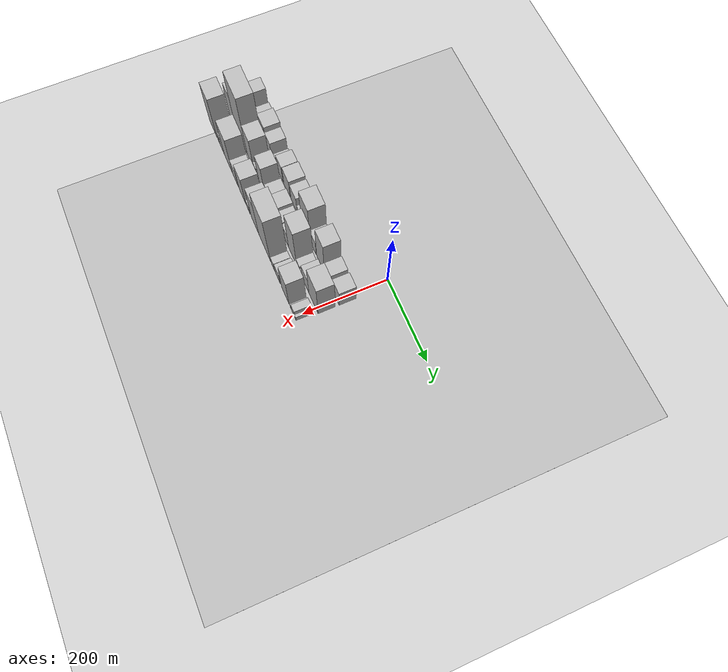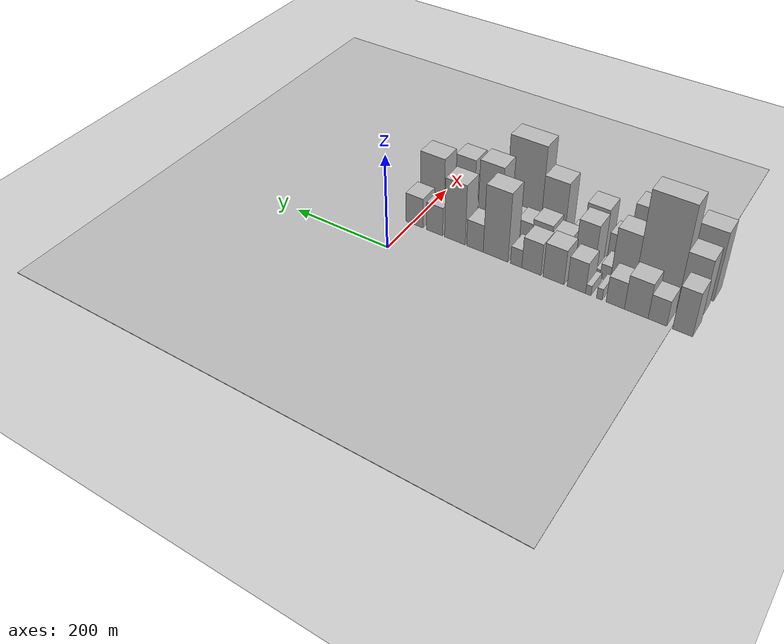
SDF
<sdf version="1.6">
 <world name="default">
  <include><name>ground_plane_1</name><uri>model://HANNAS_ground_plane</uri></include>
  <include>
   <name>ground_plane_2</name>
   <uri>model://HANNAS_ground_plane</uri>
   <pose>100 0 0  0 0 0</pose>
  </include>
  <model name="building_1">
   <static>1</static>
   <pose>100.0000 -519.0845 0 0.000000 0.000000 0.000000</pose>
   <link name="link">
    <pose>0 0 46.50 0 0 0</pose>
    <collision name="collision"><geometry><box><size>40.0000 33.8309 93.0000</size></box></geometry></collision>
    <visual name="visual">
     <cast_shadows>0</cast_shadows>
     <geometry><box><size>40.0000 33.8309 93.0000</size></box></geometry>
     <material>
      <script>
       <uri>model://HANNAS_wall/materials/scripts</uri>
       <uri>model://HANNAS_wall/materials/textures</uri>
       <name>vrc/HANNAS_wall</name>
      </script>
     </material>
    </visual>
   </link>
  </model>
  <model name="building_2">
   <static>1</static>
   <pose>100.0000 -476.1004 0 0.000000 0.000000 0.000000</pose>
   <link name="link">
    <pose>0 0 27.00 0 0 0</pose>
    <collision name="collision"><geometry><box><size>40.0000 32.1374 54.0000</size></box></geometry></collision>
    <visual name="visual">
     <cast_shadows>0</cast_shadows>
     <geometry><box><size>40.0000 32.1374 54.0000</size></box></geometry>
     <material>
      <script>
       <uri>model://HANNAS_wall/materials/scripts</uri>
       <uri>model://HANNAS_wall/materials/textures</uri>
       <name>vrc/HANNAS_wall</name>
      </script>
     </material>
    </visual>
   </link>
  </model>
  <model name="building_3">
   <static>1</static>
   <pose>100.0000 -439.1285 0 0.000000 0.000000 0.000000</pose>
   <link name="link">
    <pose>0 0 37.50 0 0 0</pose>
    <collision name="collision"><geometry><box><size>40.0000 41.8063 75.0000</size></box></geometry></collision>
    <visual name="visual">
     <cast_shadows>0</cast_shadows>
     <geometry><box><size>40.0000 41.8063 75.0000</size></box></geometry>
     <material>
      <script>
       <uri>model://HANNAS_wall/materials/scripts</uri>
       <uri>model://HANNAS_wall/materials/textures</uri>
       <name>vrc/HANNAS_wall</name>
      </script>
     </material>
    </visual>
   </link>
  </model>
  <model name="building_4">
   <static>1</static>
   <pose>100.0000 -401.7499 0 0.000000 0.000000 0.000000</pose>
   <link name="link">
    <pose>0 0 28.50 0 0 0</pose>
    <collision name="collision"><geometry><box><size>40.0000 32.9508 57.0000</size></box></geometry></collision>
    <visual name="visual">
     <cast_shadows>0</cast_shadows>
     <geometry><box><size>40.0000 32.9508 57.0000</size></box></geometry>
     <material>
      <script>
       <uri>model://HANNAS_wall/materials/scripts</uri>
       <uri>model://HANNAS_wall/materials/textures</uri>
       <name>vrc/HANNAS_wall</name>
      </script>
     </material>
    </visual>
   </link>
  </model>
  <model name="building_5">
   <static>1</static>
   <pose>100.0000 -373.0983 0 0.000000 0.000000 0.000000</pose>
   <link name="link">
    <pose>0 0 12.00 0 0 0</pose>
    <collision name="collision"><geometry><box><size>40.0000 10.3525 24.0000</size></box></geometry></collision>
    <visual name="visual">
     <cast_shadows>0</cast_shadows>
     <geometry><box><size>40.0000 10.3525 24.0000</size></box></geometry>
     <material>
      <script>
       <uri>model://HANNAS_wall/materials/scripts</uri>
       <uri>model://HANNAS_wall/materials/textures</uri>
       <name>vrc/HANNAS_wall</name>
      </script>
     </material>
    </visual>
   </link>
  </model>
  <model name="building_6">
   <static>1</static>
   <pose>100.0000 -352.8675 0 0.000000 0.000000 0.000000</pose>
   <link name="link">
    <pose>0 0 10.50 0 0 0</pose>
    <collision name="collision"><geometry><box><size>40.0000 10.1091 21.0000</size></box></geometry></collision>
    <visual name="visual">
     <cast_shadows>0</cast_shadows>
     <geometry><box><size>40.0000 10.1091 21.0000</size></box></geometry>
     <material>
      <script>
       <uri>model://HANNAS_wall/materials/scripts</uri>
       <uri>model://HANNAS_wall/materials/textures</uri>
       <name>vrc/HANNAS_wall</name>
      </script>
     </material>
    </visual>
   </link>
  </model>
  <model name="building_7">
   <static>1</static>
   <pose>100.0000 -330.7719 0 0.000000 0.000000 0.000000</pose>
   <link name="link">
    <pose>0 0 33.00 0 0 0</pose>
    <collision name="collision"><geometry><box><size>40.0000 34.0822 66.0000</size></box></geometry></collision>
    <visual name="visual">
     <cast_shadows>0</cast_shadows>
     <geometry><box><size>40.0000 34.0822 66.0000</size></box></geometry>
     <material>
      <script>
       <uri>model://HANNAS_wall/materials/scripts</uri>
       <uri>model://HANNAS_wall/materials/textures</uri>
       <name>vrc/HANNAS_wall</name>
      </script>
     </material>
    </visual>
   </link>
  </model>
  <model name="building_8">
   <static>1</static>
   <pose>100.0000 -287.7818 0 0.000000 0.000000 0.000000</pose>
   <link name="link">
    <pose>0 0 37.50 0 0 0</pose>
    <collision name="collision"><geometry><box><size>40.0000 39.8979 75.0000</size></box></geometry></collision>
    <visual name="visual">
     <cast_shadows>0</cast_shadows>
     <geometry><box><size>40.0000 39.8979 75.0000</size></box></geometry>
     <material>
      <script>
       <uri>model://HANNAS_wall/materials/scripts</uri>
       <uri>model://HANNAS_wall/materials/textures</uri>
       <name>vrc/HANNAS_wall</name>
      </script>
     </material>
    </visual>
   </link>
  </model>
  <model name="building_9">
   <static>1</static>
   <pose>100.0000 -245.2879 0 0.000000 0.000000 0.000000</pose>
   <link name="link">
    <pose>0 0 34.50 0 0 0</pose>
    <collision name="collision"><geometry><box><size>40.0000 37.0899 69.0000</size></box></geometry></collision>
    <visual name="visual">
     <cast_shadows>0</cast_shadows>
     <geometry><box><size>40.0000 37.0899 69.0000</size></box></geometry>
     <material>
      <script>
       <uri>model://HANNAS_wall/materials/scripts</uri>
       <uri>model://HANNAS_wall/materials/textures</uri>
       <name>vrc/HANNAS_wall</name>
      </script>
     </material>
    </visual>
   </link>
  </model>
  <model name="building_10">
   <static>1</static>
   <pose>100.0000 -215.5935 0 0.000000 0.000000 0.000000</pose>
   <link name="link">
    <pose>0 0 19.50 0 0 0</pose>
    <collision name="collision"><geometry><box><size>40.0000 22.2987 39.0000</size></box></geometry></collision>
    <visual name="visual">
     <cast_shadows>0</cast_shadows>
     <geometry><box><size>40.0000 22.2987 39.0000</size></box></geometry>
     <material>
      <script>
       <uri>model://HANNAS_wall/materials/scripts</uri>
       <uri>model://HANNAS_wall/materials/textures</uri>
       <name>vrc/HANNAS_wall</name>
      </script>
     </material>
    </visual>
   </link>
  </model>
  <model name="building_11">
   <static>1</static>
   <pose>100.0000 -174.6152 0 0.000000 0.000000 0.000000</pose>
   <link name="link">
    <pose>0 0 75.00 0 0 0</pose>
    <collision name="collision"><geometry><box><size>40.0000 49.6580 150.0000</size></box></geometry></collision>
    <visual name="visual">
     <cast_shadows>0</cast_shadows>
     <geometry><box><size>40.0000 49.6580 150.0000</size></box></geometry>
     <material>
      <script>
       <uri>model://HANNAS_wall/materials/scripts</uri>
       <uri>model://HANNAS_wall/materials/textures</uri>
       <name>vrc/HANNAS_wall</name>
      </script>
     </material>
    </visual>
   </link>
  </model>
  <model name="building_12">
   <static>1</static>
   <pose>100.0000 -132.8719 0 0.000000 0.000000 0.000000</pose>
   <link name="link">
    <pose>0 0 30.00 0 0 0</pose>
    <collision name="collision"><geometry><box><size>40.0000 33.8285 60.0000</size></box></geometry></collision>
    <visual name="visual">
     <cast_shadows>0</cast_shadows>
     <geometry><box><size>40.0000 33.8285 60.0000</size></box></geometry>
     <material>
      <script>
       <uri>model://HANNAS_wall/materials/scripts</uri>
       <uri>model://HANNAS_wall/materials/textures</uri>
       <name>vrc/HANNAS_wall</name>
      </script>
     </material>
    </visual>
   </link>
  </model>
  <model name="building_13">
   <static>1</static>
   <pose>100.0000 -91.4328 0 0.000000 0.000000 0.000000</pose>
   <link name="link">
    <pose>0 0 66.00 0 0 0</pose>
    <collision name="collision"><geometry><box><size>40.0000 43.0498 132.0000</size></box></geometry></collision>
    <visual name="visual">
     <cast_shadows>0</cast_shadows>
     <geometry><box><size>40.0000 43.0498 132.0000</size></box></geometry>
     <material>
      <script>
       <uri>model://HANNAS_wall/materials/scripts</uri>
       <uri>model://HANNAS_wall/materials/textures</uri>
       <name>vrc/HANNAS_wall</name>
      </script>
     </material>
    </visual>
   </link>
  </model>
  <model name="building_14">
   <static>1</static>
   <pose>100.0000 -48.8827 0 0.000000 0.000000 0.000000</pose>
   <link name="link">
    <pose>0 0 31.50 0 0 0</pose>
    <collision name="collision"><geometry><box><size>40.0000 34.0503 63.0000</size></box></geometry></collision>
    <visual name="visual">
     <cast_shadows>0</cast_shadows>
     <geometry><box><size>40.0000 34.0503 63.0000</size></box></geometry>
     <material>
      <script>
       <uri>model://HANNAS_wall/materials/scripts</uri>
       <uri>model://HANNAS_wall/materials/textures</uri>
       <name>vrc/HANNAS_wall</name>
      </script>
     </material>
    </visual>
   </link>
  </model>
  <model name="building_15">
   <static>1</static>
   <pose>100.0000 -5.6149 0 0.000000 0.000000 0.000000</pose>
   <link name="link">
    <pose>0 0 33.00 0 0 0</pose>
    <collision name="collision"><geometry><box><size>40.0000 36.4854 66.0000</size></box></geometry></collision>
    <visual name="visual">
     <cast_shadows>0</cast_shadows>
     <geometry><box><size>40.0000 36.4854 66.0000</size></box></geometry>
     <material>
      <script>
       <uri>model://HANNAS_wall/materials/scripts</uri>
       <uri>model://HANNAS_wall/materials/textures</uri>
       <name>vrc/HANNAS_wall</name>
      </script>
     </material>
    </visual>
   </link>
  </model>
  <model name="building_30">
   <static>1</static>
   <pose>149.0000 -511.6956 0 0.000000 0.000000 0.000000</pose>
   <link name="link">
    <pose>0 0 61.50 0 0 0</pose>
    <collision name="collision"><geometry><box><size>40.0000 42.6088 123.0000</size></box></geometry></collision>
    <visual name="visual">
     <cast_shadows>0</cast_shadows>
     <geometry><box><size>40.0000 42.6088 123.0000</size></box></geometry>
     <material>
      <script>
       <uri>model://HANNAS_wall/materials/scripts</uri>
       <uri>model://HANNAS_wall/materials/textures</uri>
       <name>vrc/HANNAS_wall</name>
      </script>
     </material>
    </visual>
   </link>
  </model>
  <model name="building_31">
   <static>1</static>
   <pose>149.0000 -452.3626 0 0.000000 0.000000 0.000000</pose>
   <link name="link">
    <pose>0 0 108.00 0 0 0</pose>
    <collision name="collision"><geometry><box><size>40.0000 76.0571 216.0000</size></box></geometry></collision>
    <visual name="visual">
     <cast_shadows>0</cast_shadows>
     <geometry><box><size>40.0000 76.0571 216.0000</size></box></geometry>
     <material>
      <script>
       <uri>model://HANNAS_wall/materials/scripts</uri>
       <uri>model://HANNAS_wall/materials/textures</uri>
       <name>vrc/HANNAS_wall</name>
      </script>
     </material>
    </visual>
   </link>
  </model>
  <model name="building_32">
   <static>1</static>
   <pose>149.0000 -392.5495 0 0.000000 0.000000 0.000000</pose>
   <link name="link">
    <pose>0 0 60.00 0 0 0</pose>
    <collision name="collision"><geometry><box><size>40.0000 43.5690 120.0000</size></box></geometry></collision>
    <visual name="visual">
     <cast_shadows>0</cast_shadows>
     <geometry><box><size>40.0000 43.5690 120.0000</size></box></geometry>
     <material>
      <script>
       <uri>model://HANNAS_wall/materials/scripts</uri>
       <uri>model://HANNAS_wall/materials/textures</uri>
       <name>vrc/HANNAS_wall</name>
      </script>
     </material>
    </visual>
   </link>
  </model>
  <model name="building_33">
   <static>1</static>
   <pose>149.0000 -361.2926 0 0.000000 0.000000 0.000000</pose>
   <link name="link">
    <pose>0 0 16.50 0 0 0</pose>
    <collision name="collision"><geometry><box><size>40.0000 18.9448 33.0000</size></box></geometry></collision>
    <visual name="visual">
     <cast_shadows>0</cast_shadows>
     <geometry><box><size>40.0000 18.9448 33.0000</size></box></geometry>
     <material>
      <script>
       <uri>model://HANNAS_wall/materials/scripts</uri>
       <uri>model://HANNAS_wall/materials/textures</uri>
       <name>vrc/HANNAS_wall</name>
      </script>
     </material>
    </visual>
   </link>
  </model>
  <model name="building_34">
   <static>1</static>
   <pose>149.0000 -347.5471 0 0.000000 0.000000 0.000000</pose>
   <link name="link">
    <pose>0 0 9.00 0 0 0</pose>
    <collision name="collision"><geometry><box><size>40.0000 8.5462 18.0000</size></box></geometry></collision>
    <visual name="visual">
     <cast_shadows>0</cast_shadows>
     <geometry><box><size>40.0000 8.5462 18.0000</size></box></geometry>
     <material>
      <script>
       <uri>model://HANNAS_wall/materials/scripts</uri>
       <uri>model://HANNAS_wall/materials/textures</uri>
       <name>vrc/HANNAS_wall</name>
      </script>
     </material>
    </visual>
   </link>
  </model>
  <model name="building_35">
   <static>1</static>
   <pose>149.0000 -321.5857 0 0.000000 0.000000 0.000000</pose>
   <link name="link">
    <pose>0 0 54.00 0 0 0</pose>
    <collision name="collision"><geometry><box><size>40.0000 37.3766 108.0000</size></box></geometry></collision>
    <visual name="visual">
     <cast_shadows>0</cast_shadows>
     <geometry><box><size>40.0000 37.3766 108.0000</size></box></geometry>
     <material>
      <script>
       <uri>model://HANNAS_wall/materials/scripts</uri>
       <uri>model://HANNAS_wall/materials/textures</uri>
       <name>vrc/HANNAS_wall</name>
      </script>
     </material>
    </visual>
   </link>
  </model>
  <model name="building_36">
   <static>1</static>
   <pose>149.0000 -275.1587 0 0.000000 0.000000 0.000000</pose>
   <link name="link">
    <pose>0 0 30.00 0 0 0</pose>
    <collision name="collision"><geometry><box><size>40.0000 35.4774 60.0000</size></box></geometry></collision>
    <visual name="visual">
     <cast_shadows>0</cast_shadows>
     <geometry><box><size>40.0000 35.4774 60.0000</size></box></geometry>
     <material>
      <script>
       <uri>model://HANNAS_wall/materials/scripts</uri>
       <uri>model://HANNAS_wall/materials/textures</uri>
       <name>vrc/HANNAS_wall</name>
      </script>
     </material>
    </visual>
   </link>
  </model>
  <model name="building_37">
   <static>1</static>
   <pose>149.0000 -238.4165 0 0.000000 0.000000 0.000000</pose>
   <link name="link">
    <pose>0 0 36.00 0 0 0</pose>
    <collision name="collision"><geometry><box><size>40.0000 38.0072 72.0000</size></box></geometry></collision>
    <visual name="visual">
     <cast_shadows>0</cast_shadows>
     <geometry><box><size>40.0000 38.0072 72.0000</size></box></geometry>
     <material>
      <script>
       <uri>model://HANNAS_wall/materials/scripts</uri>
       <uri>model://HANNAS_wall/materials/textures</uri>
       <name>vrc/HANNAS_wall</name>
      </script>
     </material>
    </visual>
   </link>
  </model>
  <model name="building_38">
   <static>1</static>
   <pose>149.0000 -204.2550 0 0.000000 0.000000 0.000000</pose>
   <link name="link">
    <pose>0 0 30.00 0 0 0</pose>
    <collision name="collision"><geometry><box><size>40.0000 30.3158 60.0000</size></box></geometry></collision>
    <visual name="visual">
     <cast_shadows>0</cast_shadows>
     <geometry><box><size>40.0000 30.3158 60.0000</size></box></geometry>
     <material>
      <script>
       <uri>model://HANNAS_wall/materials/scripts</uri>
       <uri>model://HANNAS_wall/materials/textures</uri>
       <name>vrc/HANNAS_wall</name>
      </script>
     </material>
    </visual>
   </link>
  </model>
  <model name="building_39">
   <static>1</static>
   <pose>149.0000 -173.2007 0 0.000000 0.000000 0.000000</pose>
   <link name="link">
    <pose>0 0 28.50 0 0 0</pose>
    <collision name="collision"><geometry><box><size>40.0000 31.7929 57.0000</size></box></geometry></collision>
    <visual name="visual">
     <cast_shadows>0</cast_shadows>
     <geometry><box><size>40.0000 31.7929 57.0000</size></box></geometry>
     <material>
      <script>
       <uri>model://HANNAS_wall/materials/scripts</uri>
       <uri>model://HANNAS_wall/materials/textures</uri>
       <name>vrc/HANNAS_wall</name>
      </script>
     </material>
    </visual>
   </link>
  </model>
  <model name="building_40">
   <static>1</static>
   <pose>149.0000 -133.5145 0 0.000000 0.000000 0.000000</pose>
   <link name="link">
    <pose>0 0 78.00 0 0 0</pose>
    <collision name="collision"><geometry><box><size>40.0000 47.5794 156.0000</size></box></geometry></collision>
    <visual name="visual">
     <cast_shadows>0</cast_shadows>
     <geometry><box><size>40.0000 47.5794 156.0000</size></box></geometry>
     <material>
      <script>
       <uri>model://HANNAS_wall/materials/scripts</uri>
       <uri>model://HANNAS_wall/materials/textures</uri>
       <name>vrc/HANNAS_wall</name>
      </script>
     </material>
    </visual>
   </link>
  </model>
  <model name="building_41">
   <static>1</static>
   <pose>149.0000 -99.1163 0 0.000000 0.000000 0.000000</pose>
   <link name="link">
    <pose>0 0 18.00 0 0 0</pose>
    <collision name="collision"><geometry><box><size>40.0000 21.2170 36.0000</size></box></geometry></collision>
    <visual name="visual">
     <cast_shadows>0</cast_shadows>
     <geometry><box><size>40.0000 21.2170 36.0000</size></box></geometry>
     <material>
      <script>
       <uri>model://HANNAS_wall/materials/scripts</uri>
       <uri>model://HANNAS_wall/materials/textures</uri>
       <name>vrc/HANNAS_wall</name>
      </script>
     </material>
    </visual>
   </link>
  </model>
  <model name="building_42">
   <static>1</static>
   <pose>149.0000 -82.8478 0 0.000000 0.000000 0.000000</pose>
   <link name="link">
    <pose>0 0 13.50 0 0 0</pose>
    <collision name="collision"><geometry><box><size>40.0000 11.3200 27.0000</size></box></geometry></collision>
    <visual name="visual">
     <cast_shadows>0</cast_shadows>
     <geometry><box><size>40.0000 11.3200 27.0000</size></box></geometry>
     <material>
      <script>
       <uri>model://HANNAS_wall/materials/scripts</uri>
       <uri>model://HANNAS_wall/materials/textures</uri>
       <name>vrc/HANNAS_wall</name>
      </script>
     </material>
    </visual>
   </link>
  </model>
  <model name="building_43">
   <static>1</static>
   <pose>149.0000 -58.1162 0 0.000000 0.000000 0.000000</pose>
   <link name="link">
    <pose>0 0 34.50 0 0 0</pose>
    <collision name="collision"><geometry><box><size>40.0000 38.1432 69.0000</size></box></geometry></collision>
    <visual name="visual">
     <cast_shadows>0</cast_shadows>
     <geometry><box><size>40.0000 38.1432 69.0000</size></box></geometry>
     <material>
      <script>
       <uri>model://HANNAS_wall/materials/scripts</uri>
       <uri>model://HANNAS_wall/materials/textures</uri>
       <name>vrc/HANNAS_wall</name>
      </script>
     </material>
    </visual>
   </link>
  </model>
  <model name="building_44">
   <static>1</static>
   <pose>149.0000 -13.2859 0 0.000000 0.000000 0.000000</pose>
   <link name="link">
    <pose>0 0 64.50 0 0 0</pose>
    <collision name="collision"><geometry><box><size>40.0000 51.5175 129.0000</size></box></geometry></collision>
    <visual name="visual">
     <cast_shadows>0</cast_shadows>
     <geometry><box><size>40.0000 51.5175 129.0000</size></box></geometry>
     <material>
      <script>
       <uri>model://HANNAS_wall/materials/scripts</uri>
       <uri>model://HANNAS_wall/materials/textures</uri>
       <name>vrc/HANNAS_wall</name>
      </script>
     </material>
    </visual>
   </link>
  </model>
  <model name="building_59">
   <static>1</static>
   <pose>198.0000 -510.9606 0 0.000000 0.000000 0.000000</pose>
   <link name="link">
    <pose>0 0 73.50 0 0 0</pose>
    <collision name="collision"><geometry><box><size>40.0000 50.0787 147.0000</size></box></geometry></collision>
    <visual name="visual">
     <cast_shadows>0</cast_shadows>
     <geometry><box><size>40.0000 50.0787 147.0000</size></box></geometry>
     <material>
      <script>
       <uri>model://HANNAS_wall/materials/scripts</uri>
       <uri>model://HANNAS_wall/materials/textures</uri>
       <name>vrc/HANNAS_wall</name>
      </script>
     </material>
    </visual>
   </link>
  </model>
  <model name="building_60">
   <static>1</static>
   <pose>198.0000 -472.0936 0 0.000000 0.000000 0.000000</pose>
   <link name="link">
    <pose>0 0 12.00 0 0 0</pose>
    <collision name="collision"><geometry><box><size>40.0000 11.6553 24.0000</size></box></geometry></collision>
    <visual name="visual">
     <cast_shadows>0</cast_shadows>
     <geometry><box><size>40.0000 11.6553 24.0000</size></box></geometry>
     <material>
      <script>
       <uri>model://HANNAS_wall/materials/scripts</uri>
       <uri>model://HANNAS_wall/materials/textures</uri>
       <name>vrc/HANNAS_wall</name>
      </script>
     </material>
    </visual>
   </link>
  </model>
  <model name="building_61">
   <static>1</static>
   <pose>198.0000 -448.6688 0 0.000000 0.000000 0.000000</pose>
   <link name="link">
    <pose>0 0 25.50 0 0 0</pose>
    <collision name="collision"><geometry><box><size>40.0000 29.1943 51.0000</size></box></geometry></collision>
    <visual name="visual">
     <cast_shadows>0</cast_shadows>
     <geometry><box><size>40.0000 29.1943 51.0000</size></box></geometry>
     <material>
      <script>
       <uri>model://HANNAS_wall/materials/scripts</uri>
       <uri>model://HANNAS_wall/materials/textures</uri>
       <name>vrc/HANNAS_wall</name>
      </script>
     </material>
    </visual>
   </link>
  </model>
  <model name="building_62">
   <static>1</static>
   <pose>198.0000 -406.2474 0 0.000000 0.000000 0.000000</pose>
   <link name="link">
    <pose>0 0 70.50 0 0 0</pose>
    <collision name="collision"><geometry><box><size>40.0000 55.6484 141.0000</size></box></geometry></collision>
    <visual name="visual">
     <cast_shadows>0</cast_shadows>
     <geometry><box><size>40.0000 55.6484 141.0000</size></box></geometry>
     <material>
      <script>
       <uri>model://HANNAS_wall/materials/scripts</uri>
       <uri>model://HANNAS_wall/materials/textures</uri>
       <name>vrc/HANNAS_wall</name>
      </script>
     </material>
    </visual>
   </link>
  </model>
  <model name="building_63">
   <static>1</static>
   <pose>198.0000 -360.5592 0 0.000000 0.000000 0.000000</pose>
   <link name="link">
    <pose>0 0 31.50 0 0 0</pose>
    <collision name="collision"><geometry><box><size>40.0000 35.7281 63.0000</size></box></geometry></collision>
    <visual name="visual">
     <cast_shadows>0</cast_shadows>
     <geometry><box><size>40.0000 35.7281 63.0000</size></box></geometry>
     <material>
      <script>
       <uri>model://HANNAS_wall/materials/scripts</uri>
       <uri>model://HANNAS_wall/materials/textures</uri>
       <name>vrc/HANNAS_wall</name>
      </script>
     </material>
    </visual>
   </link>
  </model>
  <model name="building_64">
   <static>1</static>
   <pose>198.0000 -315.8276 0 0.000000 0.000000 0.000000</pose>
   <link name="link">
    <pose>0 0 54.00 0 0 0</pose>
    <collision name="collision"><geometry><box><size>40.0000 41.7350 108.0000</size></box></geometry></collision>
    <visual name="visual">
     <cast_shadows>0</cast_shadows>
     <geometry><box><size>40.0000 41.7350 108.0000</size></box></geometry>
     <material>
      <script>
       <uri>model://HANNAS_wall/materials/scripts</uri>
       <uri>model://HANNAS_wall/materials/textures</uri>
       <name>vrc/HANNAS_wall</name>
      </script>
     </material>
    </visual>
   </link>
  </model>
  <model name="building_65">
   <static>1</static>
   <pose>198.0000 -277.0720 0 0.000000 0.000000 0.000000</pose>
   <link name="link">
    <pose>0 0 16.50 0 0 0</pose>
    <collision name="collision"><geometry><box><size>40.0000 19.7763 33.0000</size></box></geometry></collision>
    <visual name="visual">
     <cast_shadows>0</cast_shadows>
     <geometry><box><size>40.0000 19.7763 33.0000</size></box></geometry>
     <material>
      <script>
       <uri>model://HANNAS_wall/materials/scripts</uri>
       <uri>model://HANNAS_wall/materials/textures</uri>
       <name>vrc/HANNAS_wall</name>
      </script>
     </material>
    </visual>
   </link>
  </model>
  <model name="building_66">
   <static>1</static>
   <pose>198.0000 -235.3586 0 0.000000 0.000000 0.000000</pose>
   <link name="link">
    <pose>0 0 66.00 0 0 0</pose>
    <collision name="collision"><geometry><box><size>40.0000 47.6505 132.0000</size></box></geometry></collision>
    <visual name="visual">
     <cast_shadows>0</cast_shadows>
     <geometry><box><size>40.0000 47.6505 132.0000</size></box></geometry>
     <material>
      <script>
       <uri>model://HANNAS_wall/materials/scripts</uri>
       <uri>model://HANNAS_wall/materials/textures</uri>
       <name>vrc/HANNAS_wall</name>
      </script>
     </material>
    </visual>
   </link>
  </model>
  <model name="building_67">
   <static>1</static>
   <pose>198.0000 -175.9464 0 0.000000 0.000000 0.000000</pose>
   <link name="link">
    <pose>0 0 96.00 0 0 0</pose>
    <collision name="collision"><geometry><box><size>40.0000 71.1739 192.0000</size></box></geometry></collision>
    <visual name="visual">
     <cast_shadows>0</cast_shadows>
     <geometry><box><size>40.0000 71.1739 192.0000</size></box></geometry>
     <material>
      <script>
       <uri>model://HANNAS_wall/materials/scripts</uri>
       <uri>model://HANNAS_wall/materials/textures</uri>
       <name>vrc/HANNAS_wall</name>
      </script>
     </material>
    </visual>
   </link>
  </model>
  <model name="building_68">
   <static>1</static>
   <pose>198.0000 -127.3639 0 0.000000 0.000000 0.000000</pose>
   <link name="link">
    <pose>0 0 16.50 0 0 0</pose>
    <collision name="collision"><geometry><box><size>40.0000 17.9911 33.0000</size></box></geometry></collision>
    <visual name="visual">
     <cast_shadows>0</cast_shadows>
     <geometry><box><size>40.0000 17.9911 33.0000</size></box></geometry>
     <material>
      <script>
       <uri>model://HANNAS_wall/materials/scripts</uri>
       <uri>model://HANNAS_wall/materials/textures</uri>
       <name>vrc/HANNAS_wall</name>
      </script>
     </material>
    </visual>
   </link>
  </model>
  <model name="building_69">
   <static>1</static>
   <pose>198.0000 -114.7444 0 0.000000 0.000000 0.000000</pose>
   <link name="link">
    <pose>0 0 9.00 0 0 0</pose>
    <collision name="collision"><geometry><box><size>40.0000 7.2479 18.0000</size></box></geometry></collision>
    <visual name="visual">
     <cast_shadows>0</cast_shadows>
     <geometry><box><size>40.0000 7.2479 18.0000</size></box></geometry>
     <material>
      <script>
       <uri>model://HANNAS_wall/materials/scripts</uri>
       <uri>model://HANNAS_wall/materials/textures</uri>
       <name>vrc/HANNAS_wall</name>
      </script>
     </material>
    </visual>
   </link>
  </model>
  <model name="building_70">
   <static>1</static>
   <pose>198.0000 -97.5670 0 0.000000 0.000000 0.000000</pose>
   <link name="link">
    <pose>0 0 24.00 0 0 0</pose>
    <collision name="collision"><geometry><box><size>40.0000 27.1068 48.0000</size></box></geometry></collision>
    <visual name="visual">
     <cast_shadows>0</cast_shadows>
     <geometry><box><size>40.0000 27.1068 48.0000</size></box></geometry>
     <material>
      <script>
       <uri>model://HANNAS_wall/materials/scripts</uri>
       <uri>model://HANNAS_wall/materials/textures</uri>
       <name>vrc/HANNAS_wall</name>
      </script>
     </material>
    </visual>
   </link>
  </model>
  <model name="building_71">
   <static>1</static>
   <pose>198.0000 -53.8993 0 0.000000 0.000000 0.000000</pose>
   <link name="link">
    <pose>0 0 55.50 0 0 0</pose>
    <collision name="collision"><geometry><box><size>40.0000 42.2286 111.0000</size></box></geometry></collision>
    <visual name="visual">
     <cast_shadows>0</cast_shadows>
     <geometry><box><size>40.0000 42.2286 111.0000</size></box></geometry>
     <material>
      <script>
       <uri>model://HANNAS_wall/materials/scripts</uri>
       <uri>model://HANNAS_wall/materials/textures</uri>
       <name>vrc/HANNAS_wall</name>
      </script>
     </material>
    </visual>
   </link>
  </model>
  <model name="building_72">
   <static>1</static>
   <pose>198.0000 -21.7380 0 0.000000 0.000000 0.000000</pose>
   <link name="link">
    <pose>0 0 9.00 0 0 0</pose>
    <collision name="collision"><geometry><box><size>40.0000 8.0939 18.0000</size></box></geometry></collision>
    <visual name="visual">
     <cast_shadows>0</cast_shadows>
     <geometry><box><size>40.0000 8.0939 18.0000</size></box></geometry>
     <material>
      <script>
       <uri>model://HANNAS_wall/materials/scripts</uri>
       <uri>model://HANNAS_wall/materials/textures</uri>
       <name>vrc/HANNAS_wall</name>
      </script>
     </material>
    </visual>
   </link>
  </model>
  <model name="building_73">
   <static>1</static>
   <pose>198.0000 -8.6068 0 0.000000 0.000000 0.000000</pose>
   <link name="link">
    <pose>0 0 16.50 0 0 0</pose>
    <collision name="collision"><geometry><box><size>40.0000 18.1685 33.0000</size></box></geometry></collision>
    <visual name="visual">
     <cast_shadows>0</cast_shadows>
     <geometry><box><size>40.0000 18.1685 33.0000</size></box></geometry>
     <material>
      <script>
       <uri>model://HANNAS_wall/materials/scripts</uri>
       <uri>model://HANNAS_wall/materials/textures</uri>
       <name>vrc/HANNAS_wall</name>
      </script>
     </material>
    </visual>
   </link>
  </model>
  <model name="building_74">
   <static>1</static>
   <pose>198.0000 4.2532 0 0.000000 0.000000 0.000000</pose>
   <link name="link">
    <pose>0 0 9.00 0 0 0</pose>
    <collision name="collision"><geometry><box><size>40.0000 7.5517 18.0000</size></box></geometry></collision>
    <visual name="visual">
     <cast_shadows>0</cast_shadows>
     <geometry><box><size>40.0000 7.5517 18.0000</size></box></geometry>
     <material>
      <script>
       <uri>model://HANNAS_wall/materials/scripts</uri>
       <uri>model://HANNAS_wall/materials/textures</uri>
       <name>vrc/HANNAS_wall</name>
      </script>
     </material>
    </visual>
   </link>
  </model>
 </world>
</sdf>
